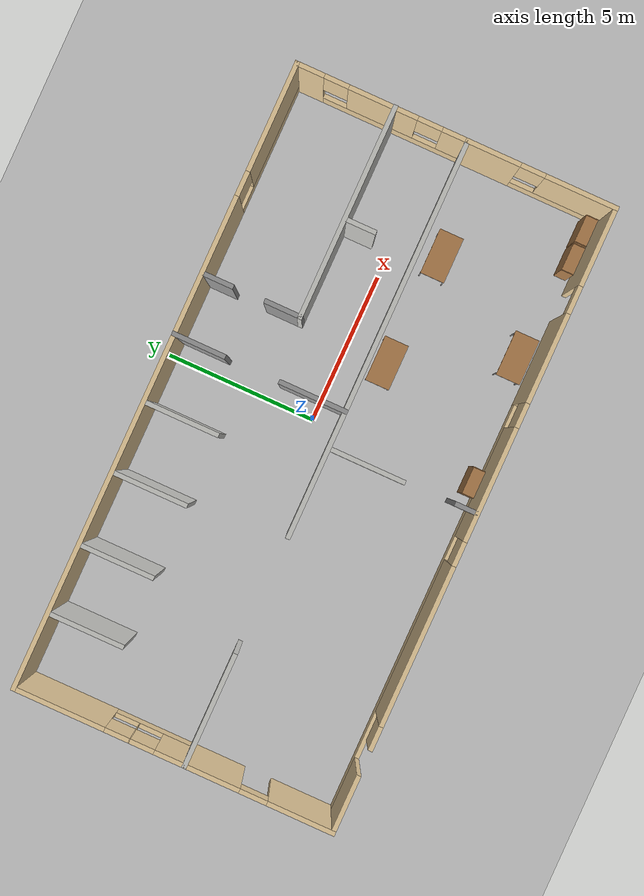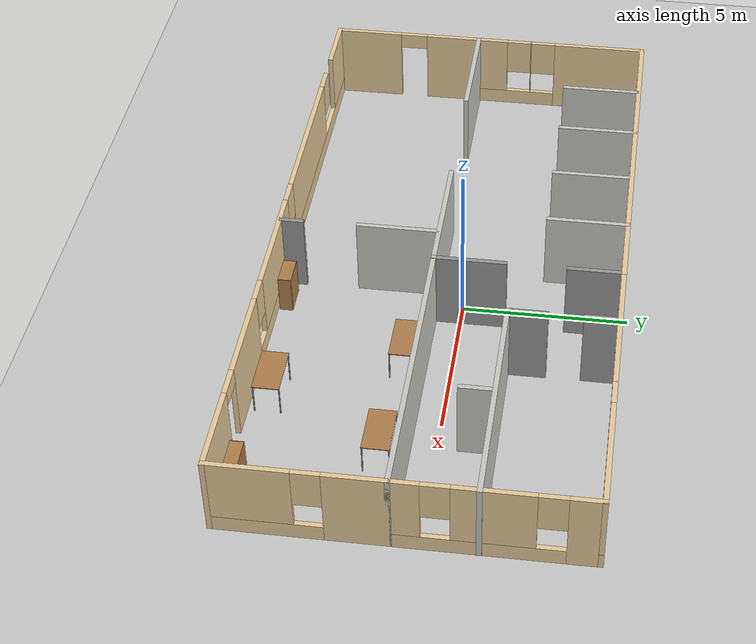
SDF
<sdf version="1.6">
 <world name="default">
  <model name="ground_plane">
   <static>1</static>
   <link name="link">
    <collision name="collision">
     <geometry><plane><normal>0 0 1</normal><size>100 100</size></plane></geometry>
     <surface><friction><ode><mu>100</mu><mu2>50</mu2></ode></friction></surface>
    </collision>
    <visual name="visual">
     <cast_shadows>0</cast_shadows>
     <geometry><plane><normal>0 0 1</normal><size>100 100</size></plane></geometry>
     <material>
      <script><uri>file://media/materials/scripts/gazebo.material</uri><name>Gazebo/Grey</name></script>
     </material>
    </visual>
   </link>
  </model>
  <model name="Office">
   <pose>-0.777206 -0.422928 0 0 -0 0</pose>
   <link name="Wall_10">
    <collision name="Wall_10_Collision">
     <geometry><box><size>2.25 0.15 2.5</size></box></geometry>
     <pose>0 0 1.25 0 -0 0</pose>
    </collision>
    <visual name="Wall_10_Visual">
     <pose>0 0 1.25 0 -0 0</pose>
     <geometry><box><size>2.25 0.15 2.5</size></box></geometry>
     <material>
      <script><uri>file://media/materials/scripts/gazebo.material</uri><name>Gazebo/Grey</name></script>
      <ambient>1 1 1 1</ambient>
     </material>
     <meta><layer>0</layer></meta>
    </visual>
    <pose>1.36821 0.675 0 0 -0 1.5708</pose>
   </link>
   <link name="Wall_12">
    <collision name="Wall_12_Collision">
     <geometry><box><size>1.75 0.15 2.5</size></box></geometry>
     <pose>0 0 1.25 0 -0 0</pose>
    </collision>
    <visual name="Wall_12_Visual">
     <pose>0 0 1.25 0 -0 0</pose>
     <geometry><box><size>1.75 0.15 2.5</size></box></geometry>
     <material>
      <script><uri>file://media/materials/scripts/gazebo.material</uri><name>Gazebo/Grey</name></script>
      <ambient>1 1 1 1</ambient>
     </material>
     <meta><layer>0</layer></meta>
    </visual>
    <pose>1.36821 4.425 0 0 -0 -1.5708</pose>
   </link>
   <link name="Wall_14">
    <collision name="Wall_14_Collision">
     <geometry><box><size>11.75 0.15 2.5</size></box></geometry>
     <pose>0 0 1.25 0 -0 0</pose>
    </collision>
    <visual name="Wall_14_Visual">
     <pose>0 0 1.25 0 -0 0</pose>
     <geometry><box><size>11.75 0.15 2.5</size></box></geometry>
     <material>
      <script><uri>file://media/materials/scripts/gazebo.material</uri><name>Gazebo/Grey</name></script>
      <ambient>0.921569 0.807843 0.615686 1</ambient>
     </material>
     <meta><layer>0</layer></meta>
    </visual>
    <pose>-4.43179 5.225 0 0 -0 3.14159</pose>
   </link>
   <link name="Wall_15">
    <pose>-10.2318 2.425 0 0 -0 -1.5708</pose>
    <visual name="Wall_15_Visual_0">
     <pose>-1.35159 0 1.25 0 -0 0</pose>
     <geometry><box><size>3.04683 0.15 2.5</size></box></geometry>
     <material>
      <script><uri>file://media/materials/scripts/gazebo.material</uri><name>Gazebo/Grey</name></script>
      <ambient>0.921569 0.807843 0.615686 1</ambient>
     </material>
     <meta><layer>0</layer></meta>
    </visual>
    <collision name="Wall_15_Collision_0">
     <geometry><box><size>3.04683 0.15 2.5</size></box></geometry>
     <pose>-1.35159 0 1.25 0 -0 0</pose>
    </collision>
    <visual name="Wall_15_Visual_1">
     <pose>1.52341 0 0.25 0 -0 0</pose>
     <geometry><box><size>2.70317 0.15 0.5</size></box></geometry>
     <material>
      <script><uri>file://media/materials/scripts/gazebo.material</uri><name>Gazebo/Grey</name></script>
      <ambient>0.921569 0.807843 0.615686 1</ambient>
     </material>
     <meta><layer>0</layer></meta>
    </visual>
    <collision name="Wall_15_Collision_1">
     <geometry><box><size>2.70317 0.15 0.5</size></box></geometry>
     <pose>1.52341 0 0.25 0 -0 0</pose>
    </collision>
    <visual name="Wall_15_Visual_2">
     <pose>0.984343 0 1.5 0 -0 0</pose>
     <geometry><box><size>0.02503 0.15 2</size></box></geometry>
     <material>
      <script><uri>file://media/materials/scripts/gazebo.material</uri><name>Gazebo/Grey</name></script>
      <ambient>0.921569 0.807843 0.615686 1</ambient>
     </material>
     <meta><layer>0</layer></meta>
    </visual>
    <collision name="Wall_15_Collision_2">
     <geometry><box><size>0.02503 0.15 2</size></box></geometry>
     <pose>0.984343 0 1.5 0 -0 0</pose>
    </collision>
    <visual name="Wall_15_Visual_3">
     <pose>2.33593 0 1.5 0 -0 0</pose>
     <geometry><box><size>1.07814 0.15 2</size></box></geometry>
     <material>
      <script><uri>file://media/materials/scripts/gazebo.material</uri><name>Gazebo/Grey</name></script>
      <ambient>0.921569 0.807843 0.615686 1</ambient>
     </material>
     <meta><layer>0</layer></meta>
    </visual>
    <collision name="Wall_15_Collision_3">
     <geometry><box><size>1.07814 0.15 2</size></box></geometry>
     <pose>2.33593 0 1.5 0 -0 0</pose>
    </collision>
    <visual name="Wall_15_Visual_4">
     <pose>0.571828 0 1.9 0 -0 0</pose>
     <geometry><box><size>0.8 0.15 1.2</size></box></geometry>
     <material>
      <script><uri>file://media/materials/scripts/gazebo.material</uri><name>Gazebo/Grey</name></script>
      <ambient>0.921569 0.807843 0.615686 1</ambient>
     </material>
     <meta><layer>0</layer></meta>
    </visual>
    <collision name="Wall_15_Collision_4">
     <geometry><box><size>0.8 0.15 1.2</size></box></geometry>
     <pose>0.571828 0 1.9 0 -0 0</pose>
    </collision>
    <visual name="Wall_15_Visual_5">
     <pose>1.39686 0 1.9 0 -0 0</pose>
     <geometry><box><size>0.8 0.15 1.2</size></box></geometry>
     <material>
      <script><uri>file://media/materials/scripts/gazebo.material</uri><name>Gazebo/Grey</name></script>
      <ambient>0.921569 0.807843 0.615686 1</ambient>
     </material>
     <meta><layer>0</layer></meta>
    </visual>
    <collision name="Wall_15_Collision_5">
     <geometry><box><size>0.8 0.15 1.2</size></box></geometry>
     <pose>1.39686 0 1.9 0 -0 0</pose>
    </collision>
   </link>
   <link name="Wall_19">
    <collision name="Wall_19_Collision">
     <geometry><box><size>2.5 0.15 2.5</size></box></geometry>
     <pose>0 0 1.25 0 -0 0</pose>
    </collision>
    <visual name="Wall_19_Visual">
     <pose>0 0 1.25 0 -0 0</pose>
     <geometry><box><size>2.5 0.15 2.5</size></box></geometry>
     <material>
      <script><uri>file://media/materials/scripts/gazebo.material</uri><name>Gazebo/CeilingTiled</name></script>
      <ambient>1 1 1 1</ambient>
     </material>
     <meta><layer>0</layer></meta>
    </visual>
    <pose>-7.76288 3.97866 0 0 -0 -1.5708</pose>
   </link>
   <link name="Wall_23">
    <collision name="Wall_23_Collision">
     <geometry><box><size>2.5 0.15 2.5</size></box></geometry>
     <pose>0 0 1.25 0 -0 0</pose>
    </collision>
    <visual name="Wall_23_Visual">
     <pose>0 0 1.25 0 -0 0</pose>
     <geometry><box><size>2.5 0.15 2.5</size></box></geometry>
     <material>
      <script><uri>file://media/materials/scripts/gazebo.material</uri><name>Gazebo/CeilingTiled</name></script>
      <ambient>1 1 1 1</ambient>
     </material>
     <meta><layer>0</layer></meta>
    </visual>
    <pose>-5.51578 4.01433 0 0 -0 -1.5708</pose>
   </link>
   <link name="Wall_25">
    <collision name="Wall_25_Collision">
     <geometry><box><size>2.5 0.15 2.5</size></box></geometry>
     <pose>0 0 1.25 0 -0 0</pose>
    </collision>
    <visual name="Wall_25_Visual">
     <pose>0 0 1.25 0 -0 0</pose>
     <geometry><box><size>2.5 0.15 2.5</size></box></geometry>
     <material>
      <script><uri>file://media/materials/scripts/gazebo.material</uri><name>Gazebo/CeilingTiled</name></script>
      <ambient>1 1 1 1</ambient>
     </material>
     <meta><layer>0</layer></meta>
    </visual>
    <pose>-3.14383 3.9965 0 0 -0 -1.5708</pose>
   </link>
   <link name="Wall_29">
    <collision name="Wall_29_Collision">
     <geometry><box><size>2.5 0.15 2.5</size></box></geometry>
     <pose>0 0 1.25 0 -0 0</pose>
    </collision>
    <visual name="Wall_29_Visual">
     <pose>0 0 1.25 0 -0 0</pose>
     <geometry><box><size>2.5 0.15 2.5</size></box></geometry>
     <material>
      <script><uri>file://media/materials/scripts/gazebo.material</uri><name>Gazebo/CeilingTiled</name></script>
      <ambient>1 1 1 1</ambient>
     </material>
     <meta><layer>0</layer></meta>
    </visual>
    <pose>-0.843227 4.01433 0 0 -0 -1.5708</pose>
   </link>
   <link name="Wall_39">
    <collision name="Wall_39_Collision">
     <geometry><box><size>7 0.15 2.5</size></box></geometry>
     <pose>0 0 1.25 0 -0 0</pose>
    </collision>
    <visual name="Wall_39_Visual">
     <pose>0 0 1.25 0 -0 0</pose>
     <geometry><box><size>7 0.15 2.5</size></box></geometry>
     <material>
      <script><uri>file://media/materials/scripts/gazebo.material</uri><name>Gazebo/CeilingTiled</name></script>
      <ambient>1 1 1 1</ambient>
     </material>
     <meta><layer>0</layer></meta>
    </visual>
    <pose>6.80679 2.01485 0 0 -0 3.14159</pose>
   </link>
   <link name="Wall_40">
    <collision name="Wall_40_Collision">
     <geometry><box><size>1.25 0.15 2.5</size></box></geometry>
     <pose>0 0 1.25 0 -0 0</pose>
    </collision>
    <visual name="Wall_40_Visual">
     <pose>0 0 1.25 0 -0 0</pose>
     <geometry><box><size>1.25 0.15 2.5</size></box></geometry>
     <material>
      <script><uri>file://media/materials/scripts/gazebo.material</uri><name>Gazebo/Grey</name></script>
      <ambient>1 1 1 1</ambient>
     </material>
     <meta><layer>0</layer></meta>
    </visual>
    <pose>3.38179 2.56485 0 0 -0 1.5708</pose>
   </link>
   <link name="Wall_43">
    <collision name="Wall_43_Collision">
     <geometry><box><size>1 0.15 2.5</size></box></geometry>
     <pose>0 0 1.25 0 -0 0</pose>
    </collision>
    <visual name="Wall_43_Visual">
     <pose>0 0 1.25 0 -0 0</pose>
     <geometry><box><size>1 0.15 2.5</size></box></geometry>
     <material>
      <script><uri>file://media/materials/scripts/gazebo.material</uri><name>Gazebo/Grey</name></script>
      <ambient>1 1 1 1</ambient>
     </material>
     <meta><layer>0</layer></meta>
    </visual>
    <pose>3.36564 4.69299 0 0 -0 -1.5708</pose>
   </link>
   <link name="Wall_45">
    <collision name="Wall_45_Collision">
     <geometry><box><size>1 0.15 2.5</size></box></geometry>
     <pose>0 0 1.25 0 -0 0</pose>
    </collision>
    <visual name="Wall_45_Visual">
     <pose>0 0 1.25 0 -0 0</pose>
     <geometry><box><size>1 0.15 2.5</size></box></geometry>
     <material>
      <script><uri>file://media/materials/scripts/gazebo.material</uri><name>Gazebo/CeilingTiled</name></script>
      <ambient>1 1 1 1</ambient>
     </material>
     <meta><layer>0</layer></meta>
    </visual>
    <pose>6.59362 1.48284 0 0 -0 -1.5708</pose>
   </link>
   <link name="Wall_47">
    <collision name="Wall_47_Collision">
     <geometry><box><size>3.75 0.15 2.5</size></box></geometry>
     <pose>0 0 1.25 0 -0 0</pose>
    </collision>
    <visual name="Wall_47_Visual">
     <pose>0 0 1.25 0 -0 0</pose>
     <geometry><box><size>3.75 0.15 2.5</size></box></geometry>
     <material>
      <script><uri>file://media/materials/scripts/gazebo.material</uri><name>Gazebo/CeilingTiled</name></script>
      <ambient>1 1 1 1</ambient>
     </material>
     <meta><layer>0</layer></meta>
    </visual>
    <pose>-8.43179 -0.375 0 0 -0 0</pose>
   </link>
   <link name="Wall_51">
    <collision name="Wall_51_Collision">
     <geometry><box><size>4.25 0.15 2.5</size></box></geometry>
     <pose>0 0 1.25 0 -0 0</pose>
    </collision>
    <visual name="Wall_51_Visual">
     <pose>0 0 1.25 0 -0 0</pose>
     <geometry><box><size>4.25 0.15 2.5</size></box></geometry>
     <material>
      <script><uri>file://media/materials/scripts/gazebo.material</uri><name>Gazebo/CeilingTiled</name></script>
      <ambient>1 1 1 1</ambient>
     </material>
     <meta><layer>0</layer></meta>
    </visual>
    <pose>-0.68179 -0.375 0 0 -0 3.14159</pose>
   </link>
   <link name="Wall_53">
    <pose>-10.2318 -2.8 0 0 -0 -1.5708</pose>
    <visual name="Wall_53_Visual_0">
     <pose>-1.56713 0 1.25 0 -0 0</pose>
     <geometry><box><size>1.86574 0.15 2.5</size></box></geometry>
     <material>
      <script><uri>file://media/materials/scripts/gazebo.material</uri><name>Gazebo/Grey</name></script>
      <ambient>0.921569 0.807843 0.615686 1</ambient>
     </material>
     <meta><layer>0</layer></meta>
    </visual>
    <collision name="Wall_53_Collision_0">
     <geometry><box><size>1.86574 0.15 2.5</size></box></geometry>
     <pose>-1.56713 0 1.25 0 -0 0</pose>
    </collision>
    <visual name="Wall_53_Visual_1">
     <pose>1.38287 0 1.25 0 -0 0</pose>
     <geometry><box><size>2.23426 0.15 2.5</size></box></geometry>
     <material>
      <script><uri>file://media/materials/scripts/gazebo.material</uri><name>Gazebo/Grey</name></script>
      <ambient>0.921569 0.807843 0.615686 1</ambient>
     </material>
     <meta><layer>0</layer></meta>
    </visual>
    <collision name="Wall_53_Collision_1">
     <geometry><box><size>2.23426 0.15 2.5</size></box></geometry>
     <pose>1.38287 0 1.25 0 -0 0</pose>
    </collision>
    <visual name="Wall_53_Visual_2">
     <pose>-0.184259 0 2.25 0 -0 0</pose>
     <geometry><box><size>0.9 0.15 0.5</size></box></geometry>
     <material>
      <script><uri>file://media/materials/scripts/gazebo.material</uri><name>Gazebo/Grey</name></script>
      <ambient>0.921569 0.807843 0.615686 1</ambient>
     </material>
     <meta><layer>0</layer></meta>
    </visual>
    <collision name="Wall_53_Collision_2">
     <geometry><box><size>0.9 0.15 0.5</size></box></geometry>
     <pose>-0.184259 0 2.25 0 -0 0</pose>
    </collision>
   </link>
   <link name="Wall_63">
    <pose>10.2182 -2.8 0 0 -0 -1.5708</pose>
    <visual name="Wall_63_Visual_0">
     <pose>-1.59369 0 1.25 0 -0 0</pose>
     <geometry><box><size>1.81261 0.15 2.5</size></box></geometry>
     <material>
      <script><uri>file://media/materials/scripts/gazebo.material</uri><name>Gazebo/Grey</name></script>
      <ambient>0.921569 0.807843 0.615686 1</ambient>
     </material>
     <meta><layer>0</layer></meta>
    </visual>
    <collision name="Wall_63_Collision_0">
     <geometry><box><size>1.81261 0.15 2.5</size></box></geometry>
     <pose>-1.59369 0 1.25 0 -0 0</pose>
    </collision>
    <visual name="Wall_63_Visual_1">
     <pose>0.906306 0 0.25 0 -0 0</pose>
     <geometry><box><size>3.18739 0.15 0.5</size></box></geometry>
     <material>
      <script><uri>file://media/materials/scripts/gazebo.material</uri><name>Gazebo/Grey</name></script>
      <ambient>0.921569 0.807843 0.615686 1</ambient>
     </material>
     <meta><layer>0</layer></meta>
    </visual>
    <collision name="Wall_63_Collision_1">
     <geometry><box><size>3.18739 0.15 0.5</size></box></geometry>
     <pose>0.906306 0 0.25 0 -0 0</pose>
    </collision>
    <visual name="Wall_63_Visual_2">
     <pose>1.30631 0 1.5 0 -0 0</pose>
     <geometry><box><size>2.38739 0.15 2</size></box></geometry>
     <material>
      <script><uri>file://media/materials/scripts/gazebo.material</uri><name>Gazebo/Grey</name></script>
      <ambient>0.921569 0.807843 0.615686 1</ambient>
     </material>
     <meta><layer>0</layer></meta>
    </visual>
    <collision name="Wall_63_Collision_2">
     <geometry><box><size>2.38739 0.15 2</size></box></geometry>
     <pose>1.30631 0 1.5 0 -0 0</pose>
    </collision>
    <visual name="Wall_63_Visual_3">
     <pose>-0.287388 0 1.9 0 -0 0</pose>
     <geometry><box><size>0.8 0.15 1.2</size></box></geometry>
     <material>
      <script><uri>file://media/materials/scripts/gazebo.material</uri><name>Gazebo/Grey</name></script>
      <ambient>0.921569 0.807843 0.615686 1</ambient>
     </material>
     <meta><layer>0</layer></meta>
    </visual>
    <collision name="Wall_63_Collision_3">
     <geometry><box><size>0.8 0.15 1.2</size></box></geometry>
     <pose>-0.287388 0 1.9 0 -0 0</pose>
    </collision>
   </link>
   <link name="Wall_64">
    <pose>-0.00679 -5.225 0 0 -0 3.14159</pose>
    <visual name="Wall_64_Visual_0">
     <pose>-8.98546 0 1.25 0 -0 0</pose>
     <geometry><box><size>2.62907 0.15 2.5</size></box></geometry>
     <material>
      <script><uri>file://media/materials/scripts/gazebo.material</uri><name>Gazebo/Grey</name></script>
      <ambient>0.921569 0.807843 0.615686 1</ambient>
     </material>
     <meta><layer>0</layer></meta>
    </visual>
    <collision name="Wall_64_Collision_0">
     <geometry><box><size>2.62907 0.15 2.5</size></box></geometry>
     <pose>-8.98546 0 1.25 0 -0 0</pose>
    </collision>
    <visual name="Wall_64_Visual_1">
     <pose>-5.30524 0 1.25 0 -0 0</pose>
     <geometry><box><size>2.93139 0.15 2.5</size></box></geometry>
     <material>
      <script><uri>file://media/materials/scripts/gazebo.material</uri><name>Gazebo/Grey</name></script>
      <ambient>0.921569 0.807843 0.615686 1</ambient>
     </material>
     <meta><layer>0</layer></meta>
    </visual>
    <collision name="Wall_64_Collision_1">
     <geometry><box><size>2.93139 0.15 2.5</size></box></geometry>
     <pose>-5.30524 0 1.25 0 -0 0</pose>
    </collision>
    <visual name="Wall_64_Visual_2">
     <pose>3.23023 0 0.25 0 -0 0</pose>
     <geometry><box><size>14.1395 0.15 0.5</size></box></geometry>
     <material>
      <script><uri>file://media/materials/scripts/gazebo.material</uri><name>Gazebo/Grey</name></script>
      <ambient>0.921569 0.807843 0.615686 1</ambient>
     </material>
     <meta><layer>0</layer></meta>
    </visual>
    <collision name="Wall_64_Collision_2">
     <geometry><box><size>14.1395 0.15 0.5</size></box></geometry>
     <pose>3.23023 0 0.25 0 -0 0</pose>
    </collision>
    <visual name="Wall_64_Visual_3">
     <pose>-1.17071 0 1.5 0 -0 0</pose>
     <geometry><box><size>3.73767 0.15 2</size></box></geometry>
     <material>
      <script><uri>file://media/materials/scripts/gazebo.material</uri><name>Gazebo/Grey</name></script>
      <ambient>0.921569 0.807843 0.615686 1</ambient>
     </material>
     <meta><layer>0</layer></meta>
    </visual>
    <collision name="Wall_64_Collision_3">
     <geometry><box><size>3.73767 0.15 2</size></box></geometry>
     <pose>-1.17071 0 1.5 0 -0 0</pose>
    </collision>
    <visual name="Wall_64_Visual_4">
     <pose>4.12324 0 1.5 0 -0 0</pose>
     <geometry><box><size>5.25022 0.15 2</size></box></geometry>
     <material>
      <script><uri>file://media/materials/scripts/gazebo.material</uri><name>Gazebo/Grey</name></script>
      <ambient>0.921569 0.807843 0.615686 1</ambient>
     </material>
     <meta><layer>0</layer></meta>
    </visual>
    <collision name="Wall_64_Collision_4">
     <geometry><box><size>5.25022 0.15 2</size></box></geometry>
     <pose>4.12324 0 1.5 0 -0 0</pose>
    </collision>
    <visual name="Wall_64_Visual_5">
     <pose>9.3195 0 1.5 0 -0 0</pose>
     <geometry><box><size>1.961 0.15 2</size></box></geometry>
     <material>
      <script><uri>file://media/materials/scripts/gazebo.material</uri><name>Gazebo/Grey</name></script>
      <ambient>0.921569 0.807843 0.615686 1</ambient>
     </material>
     <meta><layer>0</layer></meta>
    </visual>
    <collision name="Wall_64_Collision_5">
     <geometry><box><size>1.961 0.15 2</size></box></geometry>
     <pose>9.3195 0 1.5 0 -0 0</pose>
    </collision>
    <visual name="Wall_64_Visual_6">
     <pose>-3.43954 0 1.9 0 -0 0</pose>
     <geometry><box><size>0.8 0.15 1.2</size></box></geometry>
     <material>
      <script><uri>file://media/materials/scripts/gazebo.material</uri><name>Gazebo/Grey</name></script>
      <ambient>0.921569 0.807843 0.615686 1</ambient>
     </material>
     <meta><layer>0</layer></meta>
    </visual>
    <collision name="Wall_64_Collision_6">
     <geometry><box><size>0.8 0.15 1.2</size></box></geometry>
     <pose>-3.43954 0 1.9 0 -0 0</pose>
    </collision>
    <visual name="Wall_64_Visual_7">
     <pose>1.09813 0 1.9 0 -0 0</pose>
     <geometry><box><size>0.8 0.15 1.2</size></box></geometry>
     <material>
      <script><uri>file://media/materials/scripts/gazebo.material</uri><name>Gazebo/Grey</name></script>
      <ambient>0.921569 0.807843 0.615686 1</ambient>
     </material>
     <meta><layer>0</layer></meta>
    </visual>
    <collision name="Wall_64_Collision_7">
     <geometry><box><size>0.8 0.15 1.2</size></box></geometry>
     <pose>1.09813 0 1.9 0 -0 0</pose>
    </collision>
    <visual name="Wall_64_Visual_8">
     <pose>7.14367 0 1.9 0 -0 0</pose>
     <geometry><box><size>0.790654 0.15 1.2</size></box></geometry>
     <material>
      <script><uri>file://media/materials/scripts/gazebo.material</uri><name>Gazebo/Grey</name></script>
      <ambient>0.921569 0.807843 0.615686 1</ambient>
     </material>
     <meta><layer>0</layer></meta>
    </visual>
    <collision name="Wall_64_Collision_8">
     <geometry><box><size>0.790654 0.15 1.2</size></box></geometry>
     <pose>7.14367 0 1.9 0 -0 0</pose>
    </collision>
    <visual name="Wall_64_Visual_9">
     <pose>-7.22093 0 2.25 0 -0 0</pose>
     <geometry><box><size>0.9 0.15 0.5</size></box></geometry>
     <material>
      <script><uri>file://media/materials/scripts/gazebo.material</uri><name>Gazebo/Grey</name></script>
      <ambient>0.921569 0.807843 0.615686 1</ambient>
     </material>
     <meta><layer>0</layer></meta>
    </visual>
    <collision name="Wall_64_Collision_9">
     <geometry><box><size>0.9 0.15 0.5</size></box></geometry>
     <pose>-7.22093 0 2.25 0 -0 0</pose>
    </collision>
   </link>
   <link name="Wall_66">
    <collision name="Wall_66_Collision">
     <geometry><box><size>2.5 0.15 2.5</size></box></geometry>
     <pose>0 0 1.25 0 -0 0</pose>
    </collision>
    <visual name="Wall_66_Visual">
     <pose>0 0 1.25 0 -0 0</pose>
     <geometry><box><size>2.5 0.15 2.5</size></box></geometry>
     <material>
      <script><uri>file://media/materials/scripts/gazebo.material</uri><name>Gazebo/CeilingTiled</name></script>
      <ambient>1 1 1 1</ambient>
     </material>
     <meta><layer>0</layer></meta>
    </visual>
    <pose>0.166381 -1.63332 0 0 -0 -1.5708</pose>
   </link>
   <link name="Wall_68">
    <collision name="Wall_68_Collision">
     <geometry><box><size>0.75 0.15 2.5</size></box></geometry>
     <pose>0 0 1.25 0 -0 0</pose>
    </collision>
    <visual name="Wall_68_Visual">
     <pose>0 0 1.25 0 -0 0</pose>
     <geometry><box><size>0.75 0.15 2.5</size></box></geometry>
     <material>
      <script><uri>file://media/materials/scripts/gazebo.material</uri><name>Gazebo/Grey</name></script>
      <ambient>1 1 1 1</ambient>
     </material>
     <meta><layer>0</layer></meta>
    </visual>
    <pose>0.217654 -4.86018 0 0 -0 -1.5708</pose>
   </link>
   <link name="Wall_7">
    <pose>5.79321 5.225 0 0 -0 0</pose>
    <visual name="Wall_7_Visual_0">
     <pose>-2.20361 0 1.25 0 -0 0</pose>
     <geometry><box><size>4.59277 0.15 2.5</size></box></geometry>
     <material>
      <script><uri>file://media/materials/scripts/gazebo.material</uri><name>Gazebo/Grey</name></script>
      <ambient>0.921569 0.807843 0.615686 1</ambient>
     </material>
     <meta><layer>0</layer></meta>
    </visual>
    <collision name="Wall_7_Collision_0">
     <geometry><box><size>4.59277 0.15 2.5</size></box></geometry>
     <pose>-2.20361 0 1.25 0 -0 0</pose>
    </collision>
    <visual name="Wall_7_Visual_1">
     <pose>2.29639 0 0.25 0 -0 0</pose>
     <geometry><box><size>4.40723 0.15 0.5</size></box></geometry>
     <material>
      <script><uri>file://media/materials/scripts/gazebo.material</uri><name>Gazebo/Grey</name></script>
      <ambient>0.921569 0.807843 0.615686 1</ambient>
     </material>
     <meta><layer>0</layer></meta>
    </visual>
    <collision name="Wall_7_Collision_1">
     <geometry><box><size>4.40723 0.15 0.5</size></box></geometry>
     <pose>2.29639 0 0.25 0 -0 0</pose>
    </collision>
    <visual name="Wall_7_Visual_2">
     <pose>2.69639 0 1.5 0 -0 0</pose>
     <geometry><box><size>3.60723 0.15 2</size></box></geometry>
     <material>
      <script><uri>file://media/materials/scripts/gazebo.material</uri><name>Gazebo/Grey</name></script>
      <ambient>0.921569 0.807843 0.615686 1</ambient>
     </material>
     <meta><layer>0</layer></meta>
    </visual>
    <collision name="Wall_7_Collision_2">
     <geometry><box><size>3.60723 0.15 2</size></box></geometry>
     <pose>2.69639 0 1.5 0 -0 0</pose>
    </collision>
    <visual name="Wall_7_Visual_3">
     <pose>0.492771 0 1.9 0 -0 0</pose>
     <geometry><box><size>0.8 0.15 1.2</size></box></geometry>
     <material>
      <script><uri>file://media/materials/scripts/gazebo.material</uri><name>Gazebo/Grey</name></script>
      <ambient>0.921569 0.807843 0.615686 1</ambient>
     </material>
     <meta><layer>0</layer></meta>
    </visual>
    <collision name="Wall_7_Collision_3">
     <geometry><box><size>0.8 0.15 1.2</size></box></geometry>
     <pose>0.492771 0 1.9 0 -0 0</pose>
    </collision>
   </link>
   <link name="Wall_8">
    <pose>10.2182 2.425 0 0 -0 -1.5708</pose>
    <visual name="Wall_8_Visual_0">
     <pose>-2.38287 0 1.25 0 -0 0</pose>
     <geometry><box><size>0.984252 0.15 2.5</size></box></geometry>
     <material>
      <script><uri>file://media/materials/scripts/gazebo.material</uri><name>Gazebo/Grey</name></script>
      <ambient>0.921569 0.807843 0.615686 1</ambient>
     </material>
     <meta><layer>0</layer></meta>
    </visual>
    <collision name="Wall_8_Collision_0">
     <geometry><box><size>0.984252 0.15 2.5</size></box></geometry>
     <pose>-2.38287 0 1.25 0 -0 0</pose>
    </collision>
    <visual name="Wall_8_Visual_1">
     <pose>0.492126 0 0.25 0 -0 0</pose>
     <geometry><box><size>4.76575 0.15 0.5</size></box></geometry>
     <material>
      <script><uri>file://media/materials/scripts/gazebo.material</uri><name>Gazebo/Grey</name></script>
      <ambient>0.921569 0.807843 0.615686 1</ambient>
     </material>
     <meta><layer>0</layer></meta>
    </visual>
    <collision name="Wall_8_Collision_1">
     <geometry><box><size>4.76575 0.15 0.5</size></box></geometry>
     <pose>0.492126 0 0.25 0 -0 0</pose>
    </collision>
    <visual name="Wall_8_Visual_2">
     <pose>0.038996 0 1.5 0 -0 0</pose>
     <geometry><box><size>2.25949 0.15 2</size></box></geometry>
     <material>
      <script><uri>file://media/materials/scripts/gazebo.material</uri><name>Gazebo/Grey</name></script>
      <ambient>0.921569 0.807843 0.615686 1</ambient>
     </material>
     <meta><layer>0</layer></meta>
    </visual>
    <collision name="Wall_8_Collision_2">
     <geometry><box><size>2.25949 0.15 2</size></box></geometry>
     <pose>0.038996 0 1.5 0 -0 0</pose>
    </collision>
    <visual name="Wall_8_Visual_3">
     <pose>2.42187 0 1.5 0 -0 0</pose>
     <geometry><box><size>0.906261 0.15 2</size></box></geometry>
     <material>
      <script><uri>file://media/materials/scripts/gazebo.material</uri><name>Gazebo/Grey</name></script>
      <ambient>0.921569 0.807843 0.615686 1</ambient>
     </material>
     <meta><layer>0</layer></meta>
    </visual>
    <collision name="Wall_8_Collision_3">
     <geometry><box><size>0.906261 0.15 2</size></box></geometry>
     <pose>2.42187 0 1.5 0 -0 0</pose>
    </collision>
    <visual name="Wall_8_Visual_4">
     <pose>-1.49075 0 1.9 0 -0 0</pose>
     <geometry><box><size>0.8 0.15 1.2</size></box></geometry>
     <material>
      <script><uri>file://media/materials/scripts/gazebo.material</uri><name>Gazebo/Grey</name></script>
      <ambient>0.921569 0.807843 0.615686 1</ambient>
     </material>
     <meta><layer>0</layer></meta>
    </visual>
    <collision name="Wall_8_Collision_4">
     <geometry><box><size>0.8 0.15 1.2</size></box></geometry>
     <pose>-1.49075 0 1.9 0 -0 0</pose>
    </collision>
    <visual name="Wall_8_Visual_5">
     <pose>1.56874 0 1.9 0 -0 0</pose>
     <geometry><box><size>0.8 0.15 1.2</size></box></geometry>
     <material>
      <script><uri>file://media/materials/scripts/gazebo.material</uri><name>Gazebo/Grey</name></script>
      <ambient>0.921569 0.807843 0.615686 1</ambient>
     </material>
     <meta><layer>0</layer></meta>
    </visual>
    <collision name="Wall_8_Collision_5">
     <geometry><box><size>0.8 0.15 1.2</size></box></geometry>
     <pose>1.56874 0 1.9 0 -0 0</pose>
    </collision>
   </link>
   <link name="Wall_9">
    <collision name="Wall_9_Collision">
     <geometry><box><size>9 0.15 2.5</size></box></geometry>
     <pose>0 0 1.25 0 -0 0</pose>
    </collision>
    <visual name="Wall_9_Visual">
     <pose>0 0 1.25 0 -0 0</pose>
     <geometry><box><size>9 0.15 2.5</size></box></geometry>
     <material>
      <script><uri>file://media/materials/scripts/gazebo.material</uri><name>Gazebo/CeilingTiled</name></script>
      <ambient>1 1 1 1</ambient>
     </material>
     <meta><layer>0</layer></meta>
    </visual>
    <pose>5.79321 -0.375 0 0 -0 3.14159</pose>
   </link>
   <static>1</static>
  </model>
  <model name="table_6">
   <static>1</static>
   <link name="link">
    <collision name="surface">
     <pose>0 0 1 0 -0 0</pose>
     <geometry><box><size>1.5 0.8 0.03</size></box></geometry>
     <surface><friction><ode><mu>0.6</mu><mu2>0.6</mu2></ode></friction></surface>
    </collision>
    <visual name="visual1">
     <pose>0 0 1 0 -0 0</pose>
     <geometry><box><size>1.5 0.8 0.03</size></box></geometry>
     <material>
      <script><uri>file://media/materials/scripts/gazebo.material</uri><name>Gazebo/Wood</name></script>
     </material>
    </visual>
    <collision name="front_left_leg">
     <pose>0.68 0.38 0.5 0 -0 0</pose>
     <geometry><cylinder><radius>0.02</radius><length>1</length></cylinder></geometry>
    </collision>
    <visual name="front_left_leg">
     <pose>0.68 0.38 0.5 0 -0 0</pose>
     <geometry><cylinder><radius>0.02</radius><length>1</length></cylinder></geometry>
     <material>
      <script><uri>file://media/materials/scripts/gazebo.material</uri><name>Gazebo/Grey</name></script>
     </material>
    </visual>
    <collision name="front_right_leg">
     <pose>0.68 -0.38 0.5 0 -0 0</pose>
     <geometry><cylinder><radius>0.02</radius><length>1</length></cylinder></geometry>
    </collision>
    <visual name="front_right_leg">
     <pose>0.68 -0.38 0.5 0 -0 0</pose>
     <geometry><cylinder><radius>0.02</radius><length>1</length></cylinder></geometry>
     <material>
      <script><uri>file://media/materials/scripts/gazebo.material</uri><name>Gazebo/Grey</name></script>
     </material>
    </visual>
    <collision name="back_right_leg">
     <pose>-0.68 -0.38 0.5 0 -0 0</pose>
     <geometry><cylinder><radius>0.02</radius><length>1</length></cylinder></geometry>
    </collision>
    <visual name="back_right_leg">
     <pose>-0.68 -0.38 0.5 0 -0 0</pose>
     <geometry><cylinder><radius>0.02</radius><length>1</length></cylinder></geometry>
     <material>
      <script><uri>file://media/materials/scripts/gazebo.material</uri><name>Gazebo/Grey</name></script>
     </material>
    </visual>
    <collision name="back_left_leg">
     <pose>-0.68 0.38 0.5 0 -0 0</pose>
     <geometry><cylinder><radius>0.02</radius><length>1</length></cylinder></geometry>
    </collision>
    <visual name="back_left_leg">
     <pose>-0.68 0.38 0.5 0 -0 0</pose>
     <geometry><cylinder><radius>0.02</radius><length>1</length></cylinder></geometry>
     <material>
      <script><uri>file://media/materials/scripts/gazebo.material</uri><name>Gazebo/Grey</name></script>
     </material>
    </visual>
   </link>
   <pose>6.28387 -1.55228 0 0 -0 0</pose>
  </model>
  <model name="table_7">
   <static>1</static>
   <link name="link">
    <collision name="surface">
     <pose>0 0 1 0 -0 0</pose>
     <geometry><box><size>1.5 0.8 0.03</size></box></geometry>
     <surface><friction><ode><mu>0.6</mu><mu2>0.6</mu2></ode></friction></surface>
    </collision>
    <visual name="visual1">
     <pose>0 0 1 0 -0 0</pose>
     <geometry><box><size>1.5 0.8 0.03</size></box></geometry>
     <material>
      <script><uri>file://media/materials/scripts/gazebo.material</uri><name>Gazebo/Wood</name></script>
     </material>
    </visual>
    <collision name="front_left_leg">
     <pose>0.68 0.38 0.5 0 -0 0</pose>
     <geometry><cylinder><radius>0.02</radius><length>1</length></cylinder></geometry>
    </collision>
    <visual name="front_left_leg">
     <pose>0.68 0.38 0.5 0 -0 0</pose>
     <geometry><cylinder><radius>0.02</radius><length>1</length></cylinder></geometry>
     <material>
      <script><uri>file://media/materials/scripts/gazebo.material</uri><name>Gazebo/Grey</name></script>
     </material>
    </visual>
    <collision name="front_right_leg">
     <pose>0.68 -0.38 0.5 0 -0 0</pose>
     <geometry><cylinder><radius>0.02</radius><length>1</length></cylinder></geometry>
    </collision>
    <visual name="front_right_leg">
     <pose>0.68 -0.38 0.5 0 -0 0</pose>
     <geometry><cylinder><radius>0.02</radius><length>1</length></cylinder></geometry>
     <material>
      <script><uri>file://media/materials/scripts/gazebo.material</uri><name>Gazebo/Grey</name></script>
     </material>
    </visual>
    <collision name="back_right_leg">
     <pose>-0.68 -0.38 0.5 0 -0 0</pose>
     <geometry><cylinder><radius>0.02</radius><length>1</length></cylinder></geometry>
    </collision>
    <visual name="back_right_leg">
     <pose>-0.68 -0.38 0.5 0 -0 0</pose>
     <geometry><cylinder><radius>0.02</radius><length>1</length></cylinder></geometry>
     <material>
      <script><uri>file://media/materials/scripts/gazebo.material</uri><name>Gazebo/Grey</name></script>
     </material>
    </visual>
    <collision name="back_left_leg">
     <pose>-0.68 0.38 0.5 0 -0 0</pose>
     <geometry><cylinder><radius>0.02</radius><length>1</length></cylinder></geometry>
    </collision>
    <visual name="back_left_leg">
     <pose>-0.68 0.38 0.5 0 -0 0</pose>
     <geometry><cylinder><radius>0.02</radius><length>1</length></cylinder></geometry>
     <material>
      <script><uri>file://media/materials/scripts/gazebo.material</uri><name>Gazebo/Grey</name></script>
     </material>
    </visual>
   </link>
   <pose>4.37525 -5.00031 0 0 -0 0</pose>
  </model>
  <model name="bookshelf_14">
   <static>1</static>
   <link name="link">
    <inertial><mass>1</mass></inertial>
    <collision name="back">
     <pose>0 0.005 0.6 0 -0 0</pose>
     <geometry><box><size>0.9 0.01 1.2</size></box></geometry>
    </collision>
    <visual name="visual1">
     <pose>0 0.005 0.6 0 -0 0</pose>
     <geometry><box><size>0.9 0.01 1.2</size></box></geometry>
     <material>
      <script><uri>file://media/materials/scripts/gazebo.material</uri><name>Gazebo/Wood</name></script>
     </material>
    </visual>
    <collision name="left_side">
     <pose>0.45 -0.195 0.6 0 -0 0</pose>
     <geometry><box><size>0.02 0.4 1.2</size></box></geometry>
    </collision>
    <visual name="visual2">
     <pose>0.45 -0.195 0.6 0 -0 0</pose>
     <geometry><box><size>0.02 0.4 1.2</size></box></geometry>
     <material>
      <script><uri>file://media/materials/scripts/gazebo.material</uri><name>Gazebo/Wood</name></script>
     </material>
    </visual>
    <collision name="right_side">
     <pose>-0.45 -0.195 0.6 0 -0 0</pose>
     <geometry><box><size>0.02 0.4 1.2</size></box></geometry>
    </collision>
    <visual name="visual3">
     <pose>-0.45 -0.195 0.6 0 -0 0</pose>
     <geometry><box><size>0.02 0.4 1.2</size></box></geometry>
     <material>
      <script><uri>file://media/materials/scripts/gazebo.material</uri><name>Gazebo/Wood</name></script>
     </material>
    </visual>
    <collision name="bottom">
     <pose>0 -0.195 0.03 0 -0 0</pose>
     <geometry><box><size>0.88 0.4 0.06</size></box></geometry>
    </collision>
    <visual name="visual4">
     <pose>0 -0.195 0.03 0 -0 0</pose>
     <geometry><box><size>0.88 0.4 0.06</size></box></geometry>
     <material>
      <script><uri>file://media/materials/scripts/gazebo.material</uri><name>Gazebo/Wood</name></script>
     </material>
    </visual>
    <collision name="top">
     <pose>0 -0.195 1.19 0 -0 0</pose>
     <geometry><box><size>0.88 0.4 0.02</size></box></geometry>
    </collision>
    <visual name="visual5">
     <pose>0 -0.195 1.19 0 -0 0</pose>
     <geometry><box><size>0.88 0.4 0.02</size></box></geometry>
     <material>
      <script><uri>file://media/materials/scripts/gazebo.material</uri><name>Gazebo/Wood</name></script>
     </material>
    </visual>
    <collision name="low_shelf">
     <pose>0 -0.195 0.43 0 -0 0</pose>
     <geometry><box><size>0.88 0.4 0.02</size></box></geometry>
    </collision>
    <visual name="visual6">
     <pose>0 -0.195 0.43 0 -0 0</pose>
     <geometry><box><size>0.88 0.4 0.02</size></box></geometry>
     <material>
      <script><uri>file://media/materials/scripts/gazebo.material</uri><name>Gazebo/Wood</name></script>
     </material>
    </visual>
    <collision name="high_shelf">
     <pose>0 -0.195 0.8 0 -0 0</pose>
     <geometry><box><size>0.88 0.4 0.02</size></box></geometry>
    </collision>
    <visual name="visual7">
     <pose>0 -0.195 0.8 0 -0 0</pose>
     <geometry><box><size>0.88 0.4 0.02</size></box></geometry>
     <material>
      <script><uri>file://media/materials/scripts/gazebo.material</uri><name>Gazebo/Wood</name></script>
     </material>
    </visual>
   </link>
   <pose>8.79624 -5.09082 0 0 -0 0</pose>
  </model>
  <model name="bookshelf_15">
   <static>1</static>
   <link name="link">
    <inertial><mass>1</mass></inertial>
    <collision name="back">
     <pose>0 0.005 0.6 0 -0 0</pose>
     <geometry><box><size>0.9 0.01 1.2</size></box></geometry>
    </collision>
    <visual name="visual1">
     <pose>0 0.005 0.6 0 -0 0</pose>
     <geometry><box><size>0.9 0.01 1.2</size></box></geometry>
     <material>
      <script><uri>file://media/materials/scripts/gazebo.material</uri><name>Gazebo/Wood</name></script>
     </material>
    </visual>
    <collision name="left_side">
     <pose>0.45 -0.195 0.6 0 -0 0</pose>
     <geometry><box><size>0.02 0.4 1.2</size></box></geometry>
    </collision>
    <visual name="visual2">
     <pose>0.45 -0.195 0.6 0 -0 0</pose>
     <geometry><box><size>0.02 0.4 1.2</size></box></geometry>
     <material>
      <script><uri>file://media/materials/scripts/gazebo.material</uri><name>Gazebo/Wood</name></script>
     </material>
    </visual>
    <collision name="right_side">
     <pose>-0.45 -0.195 0.6 0 -0 0</pose>
     <geometry><box><size>0.02 0.4 1.2</size></box></geometry>
    </collision>
    <visual name="visual3">
     <pose>-0.45 -0.195 0.6 0 -0 0</pose>
     <geometry><box><size>0.02 0.4 1.2</size></box></geometry>
     <material>
      <script><uri>file://media/materials/scripts/gazebo.material</uri><name>Gazebo/Wood</name></script>
     </material>
    </visual>
    <collision name="bottom">
     <pose>0 -0.195 0.03 0 -0 0</pose>
     <geometry><box><size>0.88 0.4 0.06</size></box></geometry>
    </collision>
    <visual name="visual4">
     <pose>0 -0.195 0.03 0 -0 0</pose>
     <geometry><box><size>0.88 0.4 0.06</size></box></geometry>
     <material>
      <script><uri>file://media/materials/scripts/gazebo.material</uri><name>Gazebo/Wood</name></script>
     </material>
    </visual>
    <collision name="top">
     <pose>0 -0.195 1.19 0 -0 0</pose>
     <geometry><box><size>0.88 0.4 0.02</size></box></geometry>
    </collision>
    <visual name="visual5">
     <pose>0 -0.195 1.19 0 -0 0</pose>
     <geometry><box><size>0.88 0.4 0.02</size></box></geometry>
     <material>
      <script><uri>file://media/materials/scripts/gazebo.material</uri><name>Gazebo/Wood</name></script>
     </material>
    </visual>
    <collision name="low_shelf">
     <pose>0 -0.195 0.43 0 -0 0</pose>
     <geometry><box><size>0.88 0.4 0.02</size></box></geometry>
    </collision>
    <visual name="visual6">
     <pose>0 -0.195 0.43 0 -0 0</pose>
     <geometry><box><size>0.88 0.4 0.02</size></box></geometry>
     <material>
      <script><uri>file://media/materials/scripts/gazebo.material</uri><name>Gazebo/Wood</name></script>
     </material>
    </visual>
    <collision name="high_shelf">
     <pose>0 -0.195 0.8 0 -0 0</pose>
     <geometry><box><size>0.88 0.4 0.02</size></box></geometry>
    </collision>
    <visual name="visual7">
     <pose>0 -0.195 0.8 0 -0 0</pose>
     <geometry><box><size>0.88 0.4 0.02</size></box></geometry>
     <material>
      <script><uri>file://media/materials/scripts/gazebo.material</uri><name>Gazebo/Wood</name></script>
     </material>
    </visual>
   </link>
   <pose>7.83697 -5.08742 0 0 -0 0</pose>
  </model>
  <model name="bookshelf_16">
   <static>1</static>
   <link name="link">
    <inertial><mass>1</mass></inertial>
    <collision name="back">
     <pose>0 0.005 0.6 0 -0 0</pose>
     <geometry><box><size>0.9 0.01 1.2</size></box></geometry>
    </collision>
    <visual name="visual1">
     <pose>0 0.005 0.6 0 -0 0</pose>
     <geometry><box><size>0.9 0.01 1.2</size></box></geometry>
     <material>
      <script><uri>file://media/materials/scripts/gazebo.material</uri><name>Gazebo/Wood</name></script>
     </material>
    </visual>
    <collision name="left_side">
     <pose>0.45 -0.195 0.6 0 -0 0</pose>
     <geometry><box><size>0.02 0.4 1.2</size></box></geometry>
    </collision>
    <visual name="visual2">
     <pose>0.45 -0.195 0.6 0 -0 0</pose>
     <geometry><box><size>0.02 0.4 1.2</size></box></geometry>
     <material>
      <script><uri>file://media/materials/scripts/gazebo.material</uri><name>Gazebo/Wood</name></script>
     </material>
    </visual>
    <collision name="right_side">
     <pose>-0.45 -0.195 0.6 0 -0 0</pose>
     <geometry><box><size>0.02 0.4 1.2</size></box></geometry>
    </collision>
    <visual name="visual3">
     <pose>-0.45 -0.195 0.6 0 -0 0</pose>
     <geometry><box><size>0.02 0.4 1.2</size></box></geometry>
     <material>
      <script><uri>file://media/materials/scripts/gazebo.material</uri><name>Gazebo/Wood</name></script>
     </material>
    </visual>
    <collision name="bottom">
     <pose>0 -0.195 0.03 0 -0 0</pose>
     <geometry><box><size>0.88 0.4 0.06</size></box></geometry>
    </collision>
    <visual name="visual4">
     <pose>0 -0.195 0.03 0 -0 0</pose>
     <geometry><box><size>0.88 0.4 0.06</size></box></geometry>
     <material>
      <script><uri>file://media/materials/scripts/gazebo.material</uri><name>Gazebo/Wood</name></script>
     </material>
    </visual>
    <collision name="top">
     <pose>0 -0.195 1.19 0 -0 0</pose>
     <geometry><box><size>0.88 0.4 0.02</size></box></geometry>
    </collision>
    <visual name="visual5">
     <pose>0 -0.195 1.19 0 -0 0</pose>
     <geometry><box><size>0.88 0.4 0.02</size></box></geometry>
     <material>
      <script><uri>file://media/materials/scripts/gazebo.material</uri><name>Gazebo/Wood</name></script>
     </material>
    </visual>
    <collision name="low_shelf">
     <pose>0 -0.195 0.43 0 -0 0</pose>
     <geometry><box><size>0.88 0.4 0.02</size></box></geometry>
    </collision>
    <visual name="visual6">
     <pose>0 -0.195 0.43 0 -0 0</pose>
     <geometry><box><size>0.88 0.4 0.02</size></box></geometry>
     <material>
      <script><uri>file://media/materials/scripts/gazebo.material</uri><name>Gazebo/Wood</name></script>
     </material>
    </visual>
    <collision name="high_shelf">
     <pose>0 -0.195 0.8 0 -0 0</pose>
     <geometry><box><size>0.88 0.4 0.02</size></box></geometry>
    </collision>
    <visual name="visual7">
     <pose>0 -0.195 0.8 0 -0 0</pose>
     <geometry><box><size>0.88 0.4 0.02</size></box></geometry>
     <material>
      <script><uri>file://media/materials/scripts/gazebo.material</uri><name>Gazebo/Wood</name></script>
     </material>
    </visual>
   </link>
   <pose>0.273015 -5.13277 0 0 -0 0</pose>
  </model>
  <model name="table_5">
   <static>1</static>
   <link name="link">
    <collision name="surface">
     <pose>0 0 1 0 -0 0</pose>
     <geometry><box><size>1.5 0.8 0.03</size></box></geometry>
     <surface><friction><ode><mu>0.6</mu><mu2>0.6</mu2></ode></friction></surface>
    </collision>
    <visual name="visual1">
     <pose>0 0 1 0 -0 0</pose>
     <geometry><box><size>1.5 0.8 0.03</size></box></geometry>
     <material>
      <script><uri>file://media/materials/scripts/gazebo.material</uri><name>Gazebo/Wood</name></script>
     </material>
    </visual>
    <collision name="front_left_leg">
     <pose>0.68 0.38 0.5 0 -0 0</pose>
     <geometry><cylinder><radius>0.02</radius><length>1</length></cylinder></geometry>
    </collision>
    <visual name="front_left_leg">
     <pose>0.68 0.38 0.5 0 -0 0</pose>
     <geometry><cylinder><radius>0.02</radius><length>1</length></cylinder></geometry>
     <material>
      <script><uri>file://media/materials/scripts/gazebo.material</uri><name>Gazebo/Grey</name></script>
     </material>
    </visual>
    <collision name="front_right_leg">
     <pose>0.68 -0.38 0.5 0 -0 0</pose>
     <geometry><cylinder><radius>0.02</radius><length>1</length></cylinder></geometry>
    </collision>
    <visual name="front_right_leg">
     <pose>0.68 -0.38 0.5 0 -0 0</pose>
     <geometry><cylinder><radius>0.02</radius><length>1</length></cylinder></geometry>
     <material>
      <script><uri>file://media/materials/scripts/gazebo.material</uri><name>Gazebo/Grey</name></script>
     </material>
    </visual>
    <collision name="back_right_leg">
     <pose>-0.68 -0.38 0.5 0 -0 0</pose>
     <geometry><cylinder><radius>0.02</radius><length>1</length></cylinder></geometry>
    </collision>
    <visual name="back_right_leg">
     <pose>-0.68 -0.38 0.5 0 -0 0</pose>
     <geometry><cylinder><radius>0.02</radius><length>1</length></cylinder></geometry>
     <material>
      <script><uri>file://media/materials/scripts/gazebo.material</uri><name>Gazebo/Grey</name></script>
     </material>
    </visual>
    <collision name="back_left_leg">
     <pose>-0.68 0.38 0.5 0 -0 0</pose>
     <geometry><cylinder><radius>0.02</radius><length>1</length></cylinder></geometry>
    </collision>
    <visual name="back_left_leg">
     <pose>-0.68 0.38 0.5 0 -0 0</pose>
     <geometry><cylinder><radius>0.02</radius><length>1</length></cylinder></geometry>
     <material>
      <script><uri>file://media/materials/scripts/gazebo.material</uri><name>Gazebo/Grey</name></script>
     </material>
    </visual>
   </link>
   <pose>2.55118 -1.36893 0 0 -0 0</pose>
  </model>
 </world>
</sdf>
